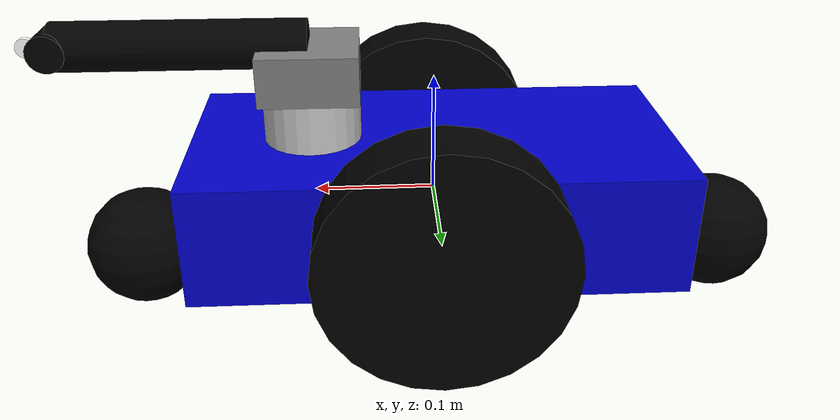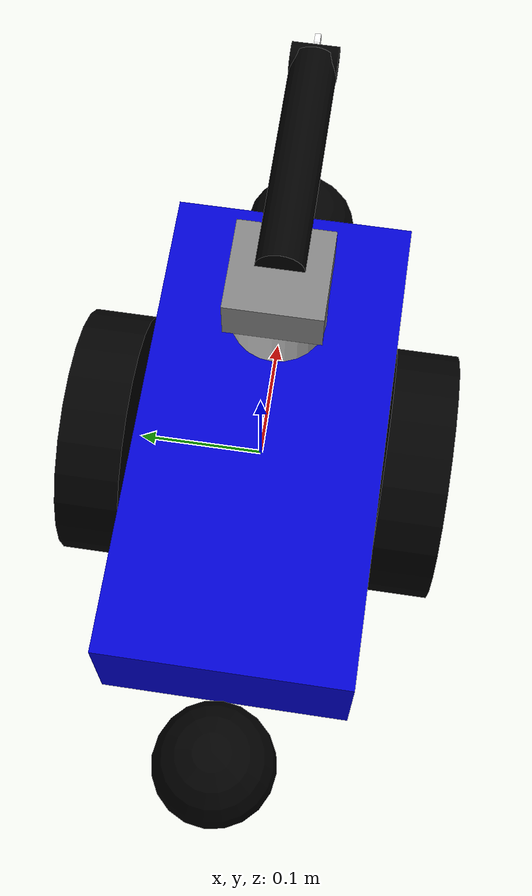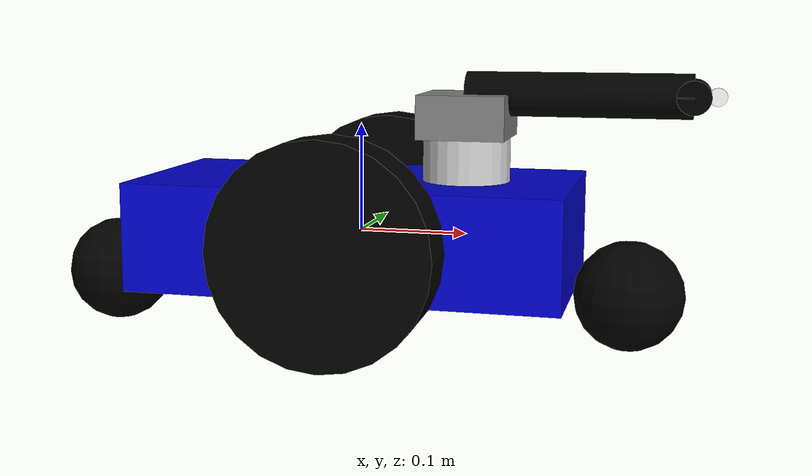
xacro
<?xml version='1.0'?>
<robot name="mogi_bot" xmlns:xacro="http://www.ros.org/wiki/xacro">

  <!-- 材料定义 -->
  <material name="blue">
    <color rgba="0 0 0.8 1"/>
  </material>
  <material name="black">
    <color rgba="0 0 0 1"/>
  </material>
  <material name="white">
    <color rgba="1 1 1 1"/>
  </material>
  <material name="gray">
    <color rgba="0.5 0.5 0.5 1"/>
  </material>
  <material name="silver">
    <color rgba="0.8 0.8 0.8 1"/>
  </material>

  <!-- 参数定义 -->
  <xacro:property name="base_mass" value="15.0" />
  <xacro:property name="wheel_mass" value="5.0" />
  <xacro:property name="wheel_radius" value="0.1" />
  <xacro:property name="wheel_length" value="0.05" />
  <xacro:property name="wheel_separation" value="0.3" />
  <xacro:property name="caster_radius" value="0.05" />

  <!-- 云台参数 -->
  <xacro:property name="gimbal_base_mass" value="0.5" />
  <xacro:property name="gimbal_yaw_mass" value="0.5" />
  <xacro:property name="barrel_mass" value="0.3" />
  <xacro:property name="camera_mass" value="0.3" />
  <xacro:property name="barrel_length" value="0.2" />
  <xacro:property name="barrel_radius" value="0.02" />

  <!-- STEP 1 - Robot footprint -->
  <link name="base_footprint">
    <inertial>
      <mass value="0.001"/>
      <inertia ixx="0.001" ixy="0.0" ixz="0.0" iyy="0.001" iyz="0.0" izz="0.001"/>
    </inertial>
  </link>

  <!-- STEP 2 - Robot chassis = base_link -->
  <joint name="base_footprint_joint" type="fixed">
    <origin xyz="0 0 0" rpy="0 0 0" />
    <parent link="base_footprint"/>
    <child link="base_link" />
  </joint>

  <link name='base_link'>
    <inertial>
      <mass value="${base_mass}"/>
      <origin xyz="0.0 0 0" rpy="0 0 0"/>
      <inertia
          ixx="0.0625" ixy="0" ixz="0"
          iyy="0.2125" iyz="0"
          izz="0.25"
      />
    </inertial>

    <collision name='collision'>
      <origin xyz="0 0 0" rpy="0 0 0"/>
      <geometry>
        <box size=".4 .2 .1"/>
      </geometry>
    </collision>

    <visual name='base_link_visual'>
      <origin xyz="0 0 0" rpy="0 0 0"/>
      <geometry>
        <box size=".4 .2 .1"/>
      </geometry>
      <material name="blue"/>
    </visual>
  </link>

  <!-- 真正的万向轮结构 -->
  <link name="caster_wheel_link">
    <inertial>
      <mass value="0.1"/>
      <inertia ixx="0.0001" ixy="0.0" ixz="0.0" iyy="0.0001" iyz="0.0" izz="0.0001"/>
    </inertial>

    <collision name="caster_wheel_collision">
      <origin xyz="0 0 0" rpy="0 0 0"/>
      <geometry>
        <sphere radius="0.05"/>
      </geometry>
    </collision>

    <visual name="caster_wheel_visual">
      <origin xyz="0 0 0" rpy="0 0 0"/>
      <geometry>
        <sphere radius="0.05"/>
      </geometry>
      <material name="black"/>
    </visual>
  </link>

  <!-- 转向关节 -->
  <joint name="caster_swivel_joint" type="continuous">
    <origin xyz="0.25 0 -0.05" rpy="0 0 0"/>
    <parent link="base_link"/>
    <child link="caster_swivel_link"/>
    <axis xyz="0 0 1"/>
  </joint>

  <link name="caster_swivel_link">
    <inertial>
      <mass value="0.05"/>
      <inertia ixx="0.00001" ixy="0.0" ixz="0.0" iyy="0.00001" iyz="0.0" izz="0.00001"/>
    </inertial>
  </link>

  <!-- 轮子安装关节 -->
  <joint name="caster_wheel_joint" type="fixed">
    <origin xyz="0 0 0" rpy="0 0 0"/>
    <parent link="caster_swivel_link"/>
    <child link="caster_wheel_link"/>
  </joint>

  <link name="caster_wheel_link_2">
    <inertial>
      <mass value="0.1"/>
      <inertia ixx="0.0001" ixy="0.0" ixz="0.0" iyy="0.0001" iyz="0.0" izz="0.0001"/>
    </inertial>

    <collision name="caster_wheel_collision_2">
      <origin xyz="0 0 0" rpy="0 0 0"/>
      <geometry>
        <sphere radius="0.05"/>
      </geometry>
    </collision>

    <visual name="caster_wheel_visual_2">
      <origin xyz="0 0 0" rpy="0 0 0"/>
      <geometry>
        <sphere radius="0.05"/>
      </geometry>
      <material name="black"/>
    </visual>
  </link>

  <!-- 转向关节 -->
  <joint name="caster_swivel_joint_2" type="continuous">
    <origin xyz="-0.25 0 -0.05" rpy="0 0 0"/>
    <parent link="base_link"/>
    <child link="caster_swivel_link_2"/>
    <axis xyz="0 0 1"/>
  </joint>

  <link name="caster_swivel_link_2">
    <inertial>
      <mass value="0.05"/>
      <inertia ixx="0.00001" ixy="0.0" ixz="0.0" iyy="0.00001" iyz="0.0" izz="0.00001"/>
    </inertial>
  </link>

  <!-- 轮子安装关节 -->
  <joint name="caster_wheel_joint_2" type="fixed">
    <origin xyz="0 0 0" rpy="0 0 0"/>
    <parent link="caster_swivel_link_2"/>
    <child link="caster_wheel_link_2"/>
  </joint>

  <!-- STEP 3 - 云台基座 -->
  <joint name="gimbal_base_joint" type="fixed">
    <origin xyz="0.1 0 0.05" rpy="0 0 0" />
    <parent link="base_link"/>
    <child link="gimbal_base" />
  </joint>

  <link name='gimbal_base'>
    <inertial>
      <mass value="${gimbal_base_mass}"/>
      <origin xyz="0 0 0.02" rpy="0 0 0"/>
      <inertia
          ixx="0.001" ixy="0" ixz="0"
          iyy="0.001" iyz="0"
          izz="0.001"
      />
    </inertial>

    <collision name='gimbal_base_collision'>
      <origin xyz="0 0 0.02" rpy="0 0 0"/>
      <geometry>
        <cylinder radius="0.04" length="0.04"/>
      </geometry>
    </collision>

    <visual name='gimbal_base_visual'>
      <origin xyz="0 0 0.02" rpy="0 0 0"/>
      <geometry>
        <cylinder radius="0.04" length="0.04"/>
      </geometry>
      <material name="silver"/>
    </visual>
  </link>

  <!-- STEP 4 - 云台偏航关节 (Yaw) -->
  <joint name="gimbal_yaw_joint" type="fixed">
    <origin xyz="0 0 0.04" rpy="0 0 0" />
    <parent link="gimbal_base"/>
    <child link="gimbal_yaw" />
    <axis xyz="0 0 1" />
    <limit lower="-3.14" upper="3.14" effort="10" velocity="2.0"/>
  </joint>

  <link name='gimbal_yaw'>
    <inertial>
      <mass value="${gimbal_yaw_mass}"/>
      <origin xyz="0 0 0.02" rpy="0 0 0"/>
      <inertia
          ixx="0.0005" ixy="0" ixz="0"
          iyy="0.0005" iyz="0"
          izz="0.0005"
      />
    </inertial>

    <collision name='gimbal_yaw_collision'>
      <origin xyz="0 0 0.02" rpy="0 0 0"/>
      <geometry>
        <box size="0.08 0.08 0.04"/>
      </geometry>
    </collision>

    <visual name='gimbal_yaw_visual'>
      <origin xyz="0 0 0.02" rpy="0 0 0"/>
      <geometry>
        <box size="0.08 0.08 0.04"/>
      </geometry>
      <material name="gray"/>
    </visual>
  </link>

  <!-- STEP 5 - 枪管连接 -->
  <joint name="barrel_joint" type="fixed">
    <origin xyz="0 0 0.04" rpy="0 0 0" />
    <parent link="gimbal_yaw"/>
    <child link="barrel_link" />
  </joint>

  <link name='barrel_link'>
    <inertial>
      <mass value="${barrel_mass}"/>
      <origin xyz="${barrel_length/2} 0 0" rpy="0 0 0"/>
      <inertia
          ixx="0.0003" ixy="0" ixz="0"
          iyy="0.0003" iyz="0"
          izz="0.0003"
      />
    </inertial>

    <collision name='barrel_collision'>
      <origin xyz="${barrel_length/2} 0 0" rpy="1.57 0 1.57"/>
      <geometry>
        <cylinder radius="${barrel_radius}" length="${barrel_length}"/>
      </geometry>
    </collision>

    <visual name='barrel_visual'>
      <origin xyz="${barrel_length/2} 0 0" rpy="1.57 0 1.57"/>
      <geometry>
        <cylinder radius="${barrel_radius}" length="${barrel_length}"/>
      </geometry>
      <material name="black"/>
    </visual>
  </link>

  <!-- STEP 6 - 相机安装在枪管末端 -->
  <joint name="camera_joint" type="fixed">
    <origin xyz="${barrel_length} 0 0" rpy="0 0 0" />
    <parent link="barrel_link"/>
    <child link="camera_link" />
  </joint>

  <link name='camera_link'>
    <inertial>
      <mass value="${camera_mass}"/>
      <origin xyz="0 0 0" rpy="0 0 0"/>
      <inertia
          ixx="0.0001" ixy="0" ixz="0"
          iyy="0.0001" iyz="0"
          izz="0.0001"
      />
    </inertial>

    <visual name='camera_visual'>
      <origin xyz="0 0 0" rpy="0 1.5708 1.5708"/>
      <geometry>
        <cylinder radius="0.015" length="0.04"/>
      </geometry>
      <material name="black"/>
    </visual>

    <visual name='camera_lens_visual'>
      <origin xyz="0.02 0 0" rpy="0 1.5708 1.5708"/>
      <geometry>
        <cylinder radius="0.008" length="0.005"/>
      </geometry>
      <material name="white"/>
    </visual>

    <collision name='camera_collision'>
      <origin xyz="0 0 0" rpy="0 1.5708 1.5708"/>
      <geometry>
        <cylinder radius="0.015" length="0.04"/>
      </geometry>
    </collision>

    <!-- 相机传感器 -->
    <sensor name="camera_sensor" type="camera">
      <pose>0.02 0 0 0 -1.5708 1.5708</pose>
      <camera name="camera">
        <horizontal_fov>1.0472</horizontal_fov>
        <image>
          <width>640</width>
          <height>480</height>
          <format>R8G8B8</format>
        </image>
        <clip>
          <near>0.05</near>
          <far>100</far>
        </clip>
        <noise>
          <type>gaussian</type>
          <mean>0.0</mean>
          <stddev>0.007</stddev>
        </noise>
      </camera>
      <always_on>1</always_on>
      <update_rate>30</update_rate>
    </sensor>
  </link>

  <!-- STEP 7 - 左轮 -->
  <joint type="continuous" name="left_wheel_joint">
    <origin xyz="0 0.125 0" rpy="0 0 0"/>
    <child link="left_wheel"/>
    <parent link="base_link"/>
    <axis xyz="0 1 0" rpy="0 0 0"/>
    <limit effort="100" velocity="10"/>
    <dynamics damping="1.0" friction="1.0"/>
  </joint>

  <link name='left_wheel'>
    <inertial>
      <mass value="${wheel_mass}"/>
      <origin xyz="0 0 0" rpy="0 1.5707 1.5707"/>
      <inertia
          ixx="0.014" ixy="0" ixz="0"
          iyy="0.014" iyz="0"
          izz="0.025"
      />
    </inertial>

    <collision name="left_wheel_collision">
      <origin xyz="0 0 0" rpy="0 1.5707 1.5707"/>
      <geometry>
        <cylinder radius="${wheel_radius}" length="${wheel_length}"/>
      </geometry>
    </collision>

    <visual name='left_wheel_visual'>
      <origin xyz="0 0 0" rpy="0 1.5707 1.5707"/>
      <geometry>
        <cylinder radius="${wheel_radius}" length="${wheel_length}"/>
      </geometry>
      <material name="black"/>
    </visual>
  </link>

  <!-- STEP 8 - 右轮 -->
  <joint type="continuous" name="right_wheel_joint">
    <origin xyz="0 -0.125 0" rpy="0 0 0"/>
    <child link="right_wheel"/>
    <parent link="base_link"/>
    <axis xyz="0 1 0" rpy="0 0 0"/>
    <limit effort="100" velocity="10"/>
    <dynamics damping="1.0" friction="1.0"/>
  </joint>

  <link name='right_wheel'>
    <inertial>
      <mass value="${wheel_mass}"/>
      <origin xyz="0 0 0" rpy="0 1.5707 1.5707"/>
      <inertia
          ixx="0.014" ixy="0" ixz="0"
          iyy="0.014" iyz="0"
          izz="0.025"
      />
    </inertial>

    <collision name="right_wheel_collision">
      <origin xyz="0 0 0" rpy="0 1.5707 1.5707"/>
      <geometry>
        <cylinder radius="${wheel_radius}" length="${wheel_length}"/>
      </geometry>
    </collision>

    <visual name='right_wheel_visual'>
      <origin xyz="0 0 0" rpy="0 1.5707 1.5707"/>
      <geometry>
        <cylinder radius="${wheel_radius}" length="${wheel_length}"/>
      </geometry>
      <material name="black"/>
    </visual>
  </link>

  <!-- Gazebo 插件配置 -->
  <gazebo>
    <plugin name="gazebo_ros2_control" filename="libgazebo_ros2_control.so">
      <parameters>$(find two_wheeled_cart)/config/controller.yaml</parameters>
      <controller_manager_node_name>controller_manager</controller_manager_node_name>
          <!-- 机器人命名空间在这里设置 -->
      <robot_namespace>robot1</robot_namespace>
    </plugin>
  </gazebo>

  <!-- 相机 Gazebo 插件 -->
  <gazebo reference="camera_link">
    <sensor type="camera" name="camera1">
      <update_rate>30.0</update_rate>
      <camera name="head">
        <horizontal_fov>1.0472</horizontal_fov>
        <image>
          <width>640</width>
          <height>480</height>
          <format>R8G8B8</format>
        </image>
        <clip>
          <near>0.05</near>
          <far>100</far>
        </clip>
      </camera>
      <plugin name="camera_controller" filename="libgazebo_ros_camera.so">
        <ros>
          <namespace>/mogi_bot</namespace>
          <remapping>image_raw:=camera/image_raw</remapping>
          <remapping>camera_info:=camera/camera_info</remapping>
        </ros>
        <camera_name>camera</camera_name>
        <frame_name>camera_link</frame_name>
        <hack_baseline>0.07</hack_baseline>
      </plugin>
    </sensor>
  </gazebo>

  <!-- 云台控制 ros2_control 配置 -->
  <ros2_control name="mogi_hardware_interface" type="system">
    <hardware>
      <plugin>gazebo_ros2_control/GazeboSystem</plugin>
      <controller_manager_node_name>robot1_controller_manager</controller_manager_node_name>
      <param name="robot_namespace">robot1</param>
      <param name="robot_param">robot_description</param>
    </hardware>

    <!-- 轮子控制 -->
    <joint name="left_wheel_joint">
      <command_interface name="velocity"/>
      <state_interface name="position"/>
      <state_interface name="velocity"/>
    </joint>
    <joint name="right_wheel_joint">
      <command_interface name="velocity"/>
      <state_interface name="position"/>
      <state_interface name="velocity"/>
    </joint>

    <!-- 云台控制 -->
    <joint name="gimbal_yaw_joint">
      <command_interface name="position"/>
      <state_interface name="position"/>
      <state_interface name="velocity"/>
    </joint>
  </ros2_control>

</robot>
